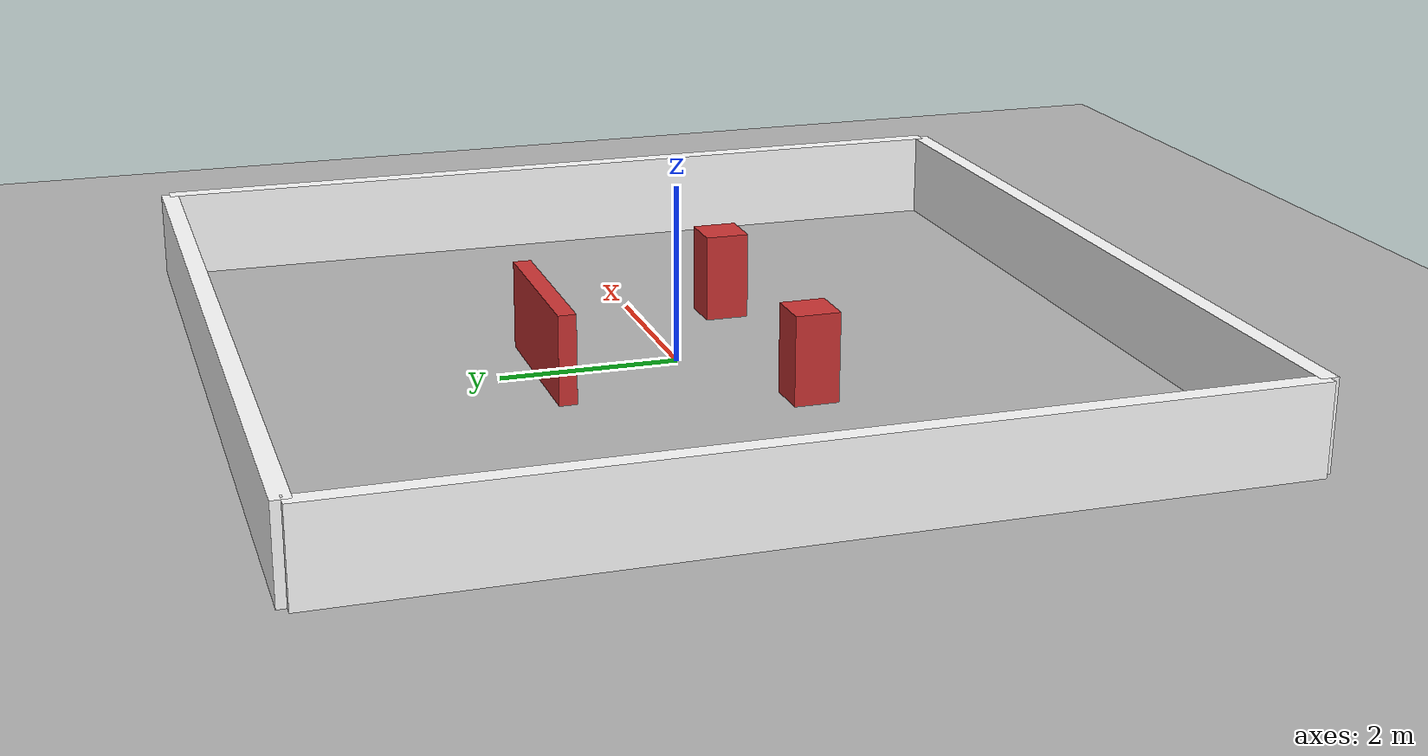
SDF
<?xml version="1.0"?>
<sdf version="1.8">
  <world name="simple_room">

    <physics name="1ms" type="ignored">
      <max_step_size>0.001</max_step_size>
      <real_time_factor>1.0</real_time_factor>
    </physics>

    <plugin filename="gz-sim-physics-system"         name="gz::sim::systems::Physics"/>
    <plugin filename="gz-sim-user-commands-system"   name="gz::sim::systems::UserCommands"/>
    <plugin filename="gz-sim-scene-broadcaster-system" name="gz::sim::systems::SceneBroadcaster"/>
    <plugin filename="gz-sim-sensors-system"         name="gz::sim::systems::Sensors">
      <render_engine>ogre2</render_engine>
    </plugin>

    <!-- 光源 -->
    <light name="sun" type="directional">
      <cast_shadows>true</cast_shadows>
      <pose>0 0 10 0 0 0</pose>
      <diffuse>1 1 1 1</diffuse>
      <specular>0.5 0.5 0.5 1</specular>
      <direction>-0.5 0.1 -0.9</direction>
    </light>

    <!-- 地板：淺灰色 -->
    <model name="ground_plane">
      <static>true</static>
      <link name="link">
        <collision name="collision">
          <geometry><plane><normal>0 0 1</normal><size>20 20</size></plane></geometry>
        </collision>
        <visual name="visual">
          <geometry><plane><normal>0 0 1</normal><size>20 20</size></plane></geometry>
          <material>
            <ambient>0.7 0.7 0.7 1</ambient>
            <diffuse>0.7 0.7 0.7 1</diffuse>
          </material>
        </visual>
      </link>
    </model>

    <!-- 外牆：白色 -->
    <model name="wall_north">
      <static>true</static>
      <pose>0 5 0.5 0 0 0</pose>
      <link name="link">
        <collision name="c"><geometry><box><size>10 0.2 1</size></box></geometry></collision>
        <visual name="v"><geometry><box><size>10 0.2 1</size></box></geometry>
          <material>
            <ambient>1.0 1.0 1.0 1</ambient>
            <diffuse>1.0 1.0 1.0 1</diffuse>
          </material></visual>
      </link>
    </model>

    <model name="wall_south">
      <static>true</static>
      <pose>0 -5 0.5 0 0 0</pose>
      <link name="link">
        <collision name="c"><geometry><box><size>10 0.2 1</size></box></geometry></collision>
        <visual name="v"><geometry><box><size>10 0.2 1</size></box></geometry>
          <material>
            <ambient>1.0 1.0 1.0 1</ambient>
            <diffuse>1.0 1.0 1.0 1</diffuse>
          </material></visual>
      </link>
    </model>

    <model name="wall_east">
      <static>true</static>
      <pose>5 0 0.5 0 0 0</pose>
      <link name="link">
        <collision name="c"><geometry><box><size>0.2 10 1</size></box></geometry></collision>
        <visual name="v"><geometry><box><size>0.2 10 1</size></box></geometry>
          <material>
            <ambient>1.0 1.0 1.0 1</ambient>
            <diffuse>1.0 1.0 1.0 1</diffuse>
          </material></visual>
      </link>
    </model>

    <model name="wall_west">
      <static>true</static>
      <pose>-5 0 0.5 0 0 0</pose>
      <link name="link">
        <collision name="c"><geometry><box><size>0.2 10 1</size></box></geometry></collision>
        <visual name="v"><geometry><box><size>0.2 10 1</size></box></geometry>
          <material>
            <ambient>1.0 1.0 1.0 1</ambient>
            <diffuse>1.0 1.0 1.0 1</diffuse>
          </material></visual>
      </link>
    </model>

    <!-- 障礙物：紅色橫牆 -->
    <model name="obstacle_1">
      <static>true</static>
      <pose>0 1.5 0.5 0 0 0</pose>
      <link name="link">
        <collision name="c"><geometry><box><size>2 0.2 1</size></box></geometry></collision>
        <visual name="v"><geometry><box><size>2 0.2 1</size></box></geometry>
          <material>
            <ambient>0.8 0.2 0.2 1</ambient>
            <diffuse>0.8 0.2 0.2 1</diffuse>
          </material></visual>
      </link>
    </model>

    <!-- 障礙物：藍色方塊 x2 -->
    <model name="obstacle_2">
      <static>true</static>
      <pose>-1.5 -1 0.5 0 0 0</pose>
      <link name="link">
        <collision name="c"><geometry><box><size>0.5 0.5 1</size></box></geometry></collision>
        <visual name="v"><geometry><box><size>0.5 0.5 1</size></box></geometry>
          <material>
            <ambient>0.8 0.2 0.2 1</ambient>
            <diffuse>0.8 0.2 0.2 1</diffuse>
          </material></visual>
      </link>
    </model>

    <model name="obstacle_3">
      <static>true</static>
      <pose>1.5 -1 0.5 0 0 0</pose>
      <link name="link">
        <collision name="c"><geometry><box><size>0.5 0.5 1</size></box></geometry></collision>
        <visual name="v"><geometry><box><size>0.5 0.5 1</size></box></geometry>
          <material>
            <ambient>0.8 0.2 0.2 1</ambient>
            <diffuse>0.8 0.2 0.2 1</diffuse>
          </material></visual>
      </link>
    </model>

  </world>
</sdf>
